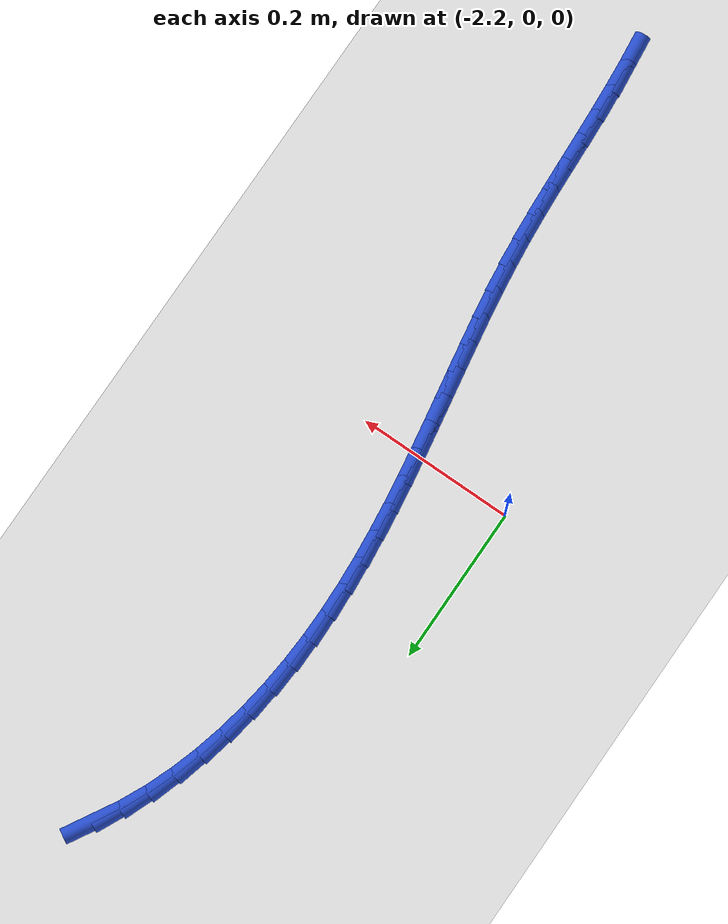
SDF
<sdf version="1.6">
 <world name="default">
  <model name="ground_plane">
   <static>1</static>
   <link name="link">
    <collision name="collision">
     <geometry><plane><normal>0 0 1</normal><size>100 100</size></plane></geometry>
     <surface><friction><ode><mu>100</mu><mu2>50</mu2></ode></friction></surface>
    </collision>
    <visual name="visual">
     <cast_shadows>0</cast_shadows>
     <geometry><plane><normal>0 0 1</normal><size>100 100</size></plane></geometry>
     <material>
      <script><uri>file://media/materials/scripts/gazebo.material</uri><name>Gazebo/WhiteGlow</name></script>
     </material>
    </visual>
   </link>
  </model>
  <model name="line">
   <link name="link_79">
    <pose>-2.0082250216855817 0.5695418029599792 0.01 0 1.57 1.051013927152846</pose>
    <collision name="collision">
     <geometry><cylinder><radius>0.01</radius><length>0.08</length></cylinder></geometry>
    </collision>
    <visual name="visual">
     <material>
      <script><name>Gazebo/Blue</name><uri>file://media/materials/scripts/gazebo.material</uri></script>
     </material>
     <geometry><cylinder><radius>0.01</radius><length>0.08</length></cylinder></geometry>
    </visual>
   </link>
   <link name="link_80">
    <pose>-2.026131842820172 0.5382511020075104 0.01 0 1.57 1.1274970307736627</pose>
    <collision name="collision">
     <geometry><cylinder><radius>0.01</radius><length>0.08</length></cylinder></geometry>
    </collision>
    <visual name="visual">
     <material>
      <script><name>Gazebo/Blue</name><uri>file://media/materials/scripts/gazebo.material</uri></script>
     </material>
     <geometry><cylinder><radius>0.01</radius><length>0.08</length></cylinder></geometry>
    </visual>
   </link>
   <link name="link_81">
    <pose>-2.0417762281140113 0.505302884237059 0.01 0 1.57 1.1972724011184157</pose>
    <collision name="collision">
     <geometry><cylinder><radius>0.01</radius><length>0.08</length></cylinder></geometry>
    </collision>
    <visual name="visual">
     <material>
      <script><name>Gazebo/Blue</name><uri>file://media/materials/scripts/gazebo.material</uri></script>
     </material>
     <geometry><cylinder><radius>0.01</radius><length>0.08</length></cylinder></geometry>
    </visual>
   </link>
   <link name="link_82">
    <pose>-2.055233889066008 0.4709653527595893 0.01 0 1.57 1.2610963844463063</pose>
    <collision name="collision">
     <geometry><cylinder><radius>0.01</radius><length>0.08</length></cylinder></geometry>
    </collision>
    <visual name="visual">
     <material>
      <script><name>Gazebo/Blue</name><uri>file://media/materials/scripts/gazebo.material</uri></script>
     </material>
     <geometry><cylinder><radius>0.01</radius><length>0.08</length></cylinder></geometry>
    </visual>
   </link>
   <link name="link_83">
    <pose>-2.06658053717507 0.4355067106860651 0.01 0 1.57 1.3197757319184846</pose>
    <collision name="collision">
     <geometry><cylinder><radius>0.01</radius><length>0.08</length></cylinder></geometry>
    </collision>
    <visual name="visual">
     <material>
      <script><name>Gazebo/Blue</name><uri>file://media/materials/scripts/gazebo.material</uri></script>
     </material>
     <geometry><cylinder><radius>0.01</radius><length>0.08</length></cylinder></geometry>
    </visual>
   </link>
   <link name="link_84">
    <pose>-2.0758918839401037 0.399195161127449 0.01 0 1.57 1.3741173761341905</pose>
    <collision name="collision">
     <geometry><cylinder><radius>0.01</radius><length>0.08</length></cylinder></geometry>
    </collision>
    <visual name="visual">
     <material>
      <script><name>Gazebo/Blue</name><uri>file://media/materials/scripts/gazebo.material</uri></script>
     </material>
     <geometry><cylinder><radius>0.01</radius><length>0.08</length></cylinder></geometry>
    </visual>
   </link>
   <link name="link_85">
    <pose>-2.083243640860019 0.36229890719470514 0.01 0 1.57 1.4249046846809668</pose>
    <collision name="collision">
     <geometry><cylinder><radius>0.01</radius><length>0.08</length></cylinder></geometry>
    </collision>
    <visual name="visual">
     <material>
      <script><name>Gazebo/Blue</name><uri>file://media/materials/scripts/gazebo.material</uri></script>
     </material>
     <geometry><cylinder><radius>0.01</radius><length>0.08</length></cylinder></geometry>
    </visual>
   </link>
   <link name="link_86">
    <pose>-2.0887115194337214 0.32508615199879765 0.01 0 1.57 1.4728921917044986</pose>
    <collision name="collision">
     <geometry><cylinder><radius>0.01</radius><length>0.08</length></cylinder></geometry>
    </collision>
    <visual name="visual">
     <material>
      <script><name>Gazebo/Blue</name><uri>file://media/materials/scripts/gazebo.material</uri></script>
     </material>
     <geometry><cylinder><radius>0.01</radius><length>0.08</length></cylinder></geometry>
    </visual>
   </link>
   <link name="link_87">
    <pose>-2.0923712311601204 0.28782509865068934 0.01 0 1.57 1.5185333344096397</pose>
    <collision name="collision">
     <geometry><cylinder><radius>0.01</radius><length>0.08</length></cylinder></geometry>
    </collision>
    <visual name="visual">
     <material>
      <script><name>Gazebo/Blue</name><uri>file://media/materials/scripts/gazebo.material</uri></script>
     </material>
     <geometry><cylinder><radius>0.01</radius><length>0.08</length></cylinder></geometry>
    </visual>
   </link>
   <link name="link_88">
    <pose>-2.0943107908686707 0.25074736198027986 0.01 0 1.57 1.5607642397315553</pose>
    <collision name="collision">
     <geometry><cylinder><radius>0.01</radius><length>0.08</length></cylinder></geometry>
    </collision>
    <visual name="visual">
     <material>
      <script><name>Gazebo/Blue</name><uri>file://media/materials/scripts/gazebo.material</uri></script>
     </material>
     <geometry><cylinder><radius>0.01</radius><length>0.08</length></cylinder></geometry>
    </visual>
   </link>
   <link name="link_89">
    <pose>-2.0946804649326083 0.21389942995513112 0.01 0 1.57 -1.5426764899961765</pose>
    <collision name="collision">
     <geometry><cylinder><radius>0.01</radius><length>0.08</length></cylinder></geometry>
    </collision>
    <visual name="visual">
     <material>
      <script><name>Gazebo/Blue</name><uri>file://media/materials/scripts/gazebo.material</uri></script>
     </material>
     <geometry><cylinder><radius>0.01</radius><length>0.08</length></cylinder></geometry>
    </visual>
   </link>
   <link name="link_90">
    <pose>-2.093650162234786 0.1772693766312381 0.01 0 1.57 -1.5088190425994055</pose>
    <collision name="collision">
     <geometry><cylinder><radius>0.01</radius><length>0.08</length></cylinder></geometry>
    </collision>
    <visual name="visual">
     <material>
      <script><name>Gazebo/Blue</name><uri>file://media/materials/scripts/gazebo.material</uri></script>
     </material>
     <geometry><cylinder><radius>0.01</radius><length>0.08</length></cylinder></geometry>
    </visual>
   </link>
   <link name="link_91">
    <pose>-2.091389799127594 0.14084525385128271 0.01 0 1.57 -1.4794012477290008</pose>
    <collision name="collision">
     <geometry><cylinder><radius>0.01</radius><length>0.08</length></cylinder></geometry>
    </collision>
    <visual name="visual">
     <material>
      <script><name>Gazebo/Blue</name><uri>file://media/materials/scripts/gazebo.material</uri></script>
     </material>
     <geometry><cylinder><radius>0.01</radius><length>0.08</length></cylinder></geometry>
    </visual>
   </link>
   <link name="link_92">
    <pose>-2.088069291963429 0.10461511345794808 0.01 0 1.57 -1.454514509087527</pose>
    <collision name="collision">
     <geometry><cylinder><radius>0.01</radius><length>0.08</length></cylinder></geometry>
    </collision>
    <visual name="visual">
     <material>
      <script><name>Gazebo/Blue</name><uri>file://media/materials/scripts/gazebo.material</uri></script>
     </material>
     <geometry><cylinder><radius>0.01</radius><length>0.08</length></cylinder></geometry>
    </visual>
   </link>
   <link name="link_93">
    <pose>-2.0838585570946826 0.06856700729391726 0.01 0 1.57 -1.434212840947778</pose>
    <collision name="collision">
     <geometry><cylinder><radius>0.01</radius><length>0.08</length></cylinder></geometry>
    </collision>
    <visual name="visual">
     <material>
      <script><name>Gazebo/Blue</name><uri>file://media/materials/scripts/gazebo.material</uri></script>
     </material>
     <geometry><cylinder><radius>0.01</radius><length>0.08</length></cylinder></geometry>
    </visual>
   </link>
   <link name="link_94">
    <pose>-2.07892751087375 0.03268898720187232 0.01 0 1.57 -1.4185278533228578</pose>
    <collision name="collision">
     <geometry><cylinder><radius>0.01</radius><length>0.08</length></cylinder></geometry>
    </collision>
    <visual name="visual">
     <material>
      <script><name>Gazebo/Blue</name><uri>file://media/materials/scripts/gazebo.material</uri></script>
     </material>
     <geometry><cylinder><radius>0.01</radius><length>0.08</length></cylinder></geometry>
    </visual>
   </link>
   <link name="link_95">
    <pose>-2.073446069653023 -0.003030894975503809 0.01 0 1.57 -1.407481508425267</pose>
    <collision name="collision">
     <geometry><cylinder><radius>0.01</radius><length>0.08</length></cylinder></geometry>
    </collision>
    <visual name="visual">
     <material>
      <script><name>Gazebo/Blue</name><uri>file://media/materials/scripts/gazebo.material</uri></script>
     </material>
     <geometry><cylinder><radius>0.01</radius><length>0.08</length></cylinder></geometry>
    </visual>
   </link>
   <link name="link_96">
    <pose>-2.067584149784896 -0.03860458739552834 0.01 0 1.57 -1.4010962389048223</pose>
    <collision name="collision">
     <geometry><cylinder><radius>0.01</radius><length>0.08</length></cylinder></geometry>
    </collision>
    <visual name="visual">
     <material>
      <script><name>Gazebo/Blue</name><uri>file://media/materials/scripts/gazebo.material</uri></script>
     </material>
     <geometry><cylinder><radius>0.01</radius><length>0.08</length></cylinder></geometry>
    </visual>
   </link>
   <link name="link_97">
    <pose>-2.0615116676217617 -0.07404403821551861 0.01 0 1.57 -1.3994022678391413</pose>
    <collision name="collision">
     <geometry><cylinder><radius>0.01</radius><length>0.08</length></cylinder></geometry>
    </collision>
    <visual name="visual">
     <material>
      <script><name>Gazebo/Blue</name><uri>file://media/materials/scripts/gazebo.material</uri></script>
     </material>
     <geometry><cylinder><radius>0.01</radius><length>0.08</length></cylinder></geometry>
    </visual>
   </link>
   <link name="link_98">
    <pose>-2.0553985395160144 -0.10936119559279112 0.01 0 1.57 -1.4024420673177986</pose>
    <collision name="collision">
     <geometry><cylinder><radius>0.01</radius><length>0.08</length></cylinder></geometry>
    </collision>
    <visual name="visual">
     <material>
      <script><name>Gazebo/Blue</name><uri>file://media/materials/scripts/gazebo.material</uri></script>
     </material>
     <geometry><cylinder><radius>0.01</radius><length>0.08</length></cylinder></geometry>
    </visual>
   </link>
   <link name="link_99">
    <pose>-2.0494146818200476 -0.1445680076846647 0.01 0 1.57 -1.4102718733257131</pose>
    <collision name="collision">
     <geometry><cylinder><radius>0.01</radius><length>0.08</length></cylinder></geometry>
    </collision>
    <visual name="visual">
     <material>
      <script><name>Gazebo/Blue</name><uri>file://media/materials/scripts/gazebo.material</uri></script>
     </material>
     <geometry><cylinder><radius>0.01</radius><length>0.08</length></cylinder></geometry>
    </visual>
   </link>
   <link name="link_100">
    <pose>-2.0437300108862537 -0.1796764226484559 0.01 0 1.57 -1.4229600812417518</pose>
    <collision name="collision">
     <geometry><cylinder><radius>0.01</radius><length>0.08</length></cylinder></geometry>
    </collision>
    <visual name="visual">
     <material>
      <script><name>Gazebo/Blue</name><uri>file://media/materials/scripts/gazebo.material</uri></script>
     </material>
     <geometry><cylinder><radius>0.01</radius><length>0.08</length></cylinder></geometry>
    </visual>
   </link>
   <link name="link_101">
    <pose>-2.0385144430670272 -0.21469838864148202 0.01 0 1.57 -1.4405822231461054</pose>
    <collision name="collision">
     <geometry><cylinder><radius>0.01</radius><length>0.08</length></cylinder></geometry>
    </collision>
    <visual name="visual">
     <material>
      <script><name>Gazebo/Blue</name><uri>file://media/materials/scripts/gazebo.material</uri></script>
     </material>
     <geometry><cylinder><radius>0.01</radius><length>0.08</length></cylinder></geometry>
    </visual>
   </link>
   <link name="link_102">
    <pose>-2.0339378947147613 -0.2496458538210603 0.01 0 1.57 -1.4632067639345832</pose>
    <collision name="collision">
     <geometry><cylinder><radius>0.01</radius><length>0.08</length></cylinder></geometry>
    </collision>
    <visual name="visual">
     <material>
      <script><name>Gazebo/Blue</name><uri>file://media/materials/scripts/gazebo.material</uri></script>
     </material>
     <geometry><cylinder><radius>0.01</radius><length>0.08</length></cylinder></geometry>
    </visual>
   </link>
   <link name="link_103">
    <pose>-2.030170090392602 -0.28453078968594264 0.01 0 1.57 -1.4878687626327716</pose>
    <collision name="collision">
     <geometry><cylinder><radius>0.01</radius><length>0.08</length></cylinder></geometry>
    </collision>
    <visual name="visual">
     <material>
      <script><name>Gazebo/Blue</name><uri>file://media/materials/scripts/gazebo.material</uri></script>
     </material>
     <geometry><cylinder><radius>0.01</radius><length>0.08</length></cylinder></geometry>
    </visual>
   </link>
   <link name="link_104">
    <pose>-2.027273636507978 -0.3193782043959434 0.01 0 1.57 -1.5064262145374971</pose>
    <collision name="collision">
     <geometry><cylinder><radius>0.01</radius><length>0.08</length></cylinder></geometry>
    </collision>
    <visual name="visual">
     <material>
      <script><name>Gazebo/Blue</name><uri>file://media/materials/scripts/gazebo.material</uri></script>
     </material>
     <geometry><cylinder><radius>0.01</radius><length>0.08</length></cylinder></geometry>
    </visual>
   </link>
   <link name="link_105">
    <pose>-2.02502597067375 -0.35424781216883183 0.01 0 1.57 -1.5173996926693563</pose>
    <collision name="collision">
     <geometry><cylinder><radius>0.01</radius><length>0.08</length></cylinder></geometry>
    </collision>
    <visual name="visual">
     <material>
      <script><name>Gazebo/Blue</name><uri>file://media/materials/scripts/gazebo.material</uri></script>
     </material>
     <geometry><cylinder><radius>0.01</radius><length>0.08</length></cylinder></geometry>
    </visual>
   </link>
   <link name="link_106">
    <pose>-2.0231575963670876 -0.38920503927385386 0.01 0 1.57 -1.5207508338220859</pose>
    <collision name="collision">
     <geometry><cylinder><radius>0.01</radius><length>0.08</length></cylinder></geometry>
    </collision>
    <visual name="visual">
     <material>
      <script><name>Gazebo/Blue</name><uri>file://media/materials/scripts/gazebo.material</uri></script>
     </material>
     <geometry><cylinder><radius>0.01</radius><length>0.08</length></cylinder></geometry>
    </visual>
   </link>
   <link name="link_107">
    <pose>-2.021399017065159 -0.424315311980253 0.01 0 1.57 -1.5165515761110535</pose>
    <collision name="collision">
     <geometry><cylinder><radius>0.01</radius><length>0.08</length></cylinder></geometry>
    </collision>
    <visual name="visual">
     <material>
      <script><name>Gazebo/Blue</name><uri>file://media/materials/scripts/gazebo.material</uri></script>
     </material>
     <geometry><cylinder><radius>0.01</radius><length>0.08</length></cylinder></geometry>
    </visual>
   </link>
   <link name="link_108">
    <pose>-2.019480736245133 -0.4596440565572736 0.01 0 1.57 -1.5049745414402274</pose>
    <collision name="collision">
     <geometry><cylinder><radius>0.01</radius><length>0.08</length></cylinder></geometry>
    </collision>
    <visual name="visual">
     <material>
      <script><name>Gazebo/Blue</name><uri>file://media/materials/scripts/gazebo.material</uri></script>
     </material>
     <geometry><cylinder><radius>0.01</radius><length>0.08</length></cylinder></geometry>
    </visual>
   </link>
   <link name="link_109">
    <pose>-2.01713325738418 -0.4952566992741598 0.01 0 1.57 -1.4862926293519012</pose>
    <collision name="collision">
     <geometry><cylinder><radius>0.01</radius><length>0.08</length></cylinder></geometry>
    </collision>
    <visual name="visual">
     <material>
      <script><name>Gazebo/Blue</name><uri>file://media/materials/scripts/gazebo.material</uri></script>
     </material>
     <geometry><cylinder><radius>0.01</radius><length>0.08</length></cylinder></geometry>
    </visual>
   </link>
   <link name="link_110">
    <pose>-2.0140870839594682 -0.531218666400156 0.01 0 1.57 -1.4608857367445836</pose>
    <collision name="collision">
     <geometry><cylinder><radius>0.01</radius><length>0.08</length></cylinder></geometry>
    </collision>
    <visual name="visual">
     <material>
      <script><name>Gazebo/Blue</name><uri>file://media/materials/scripts/gazebo.material</uri></script>
     </material>
     <geometry><cylinder><radius>0.01</radius><length>0.08</length></cylinder></geometry>
    </visual>
   </link>
  </model>
 </world>
</sdf>
